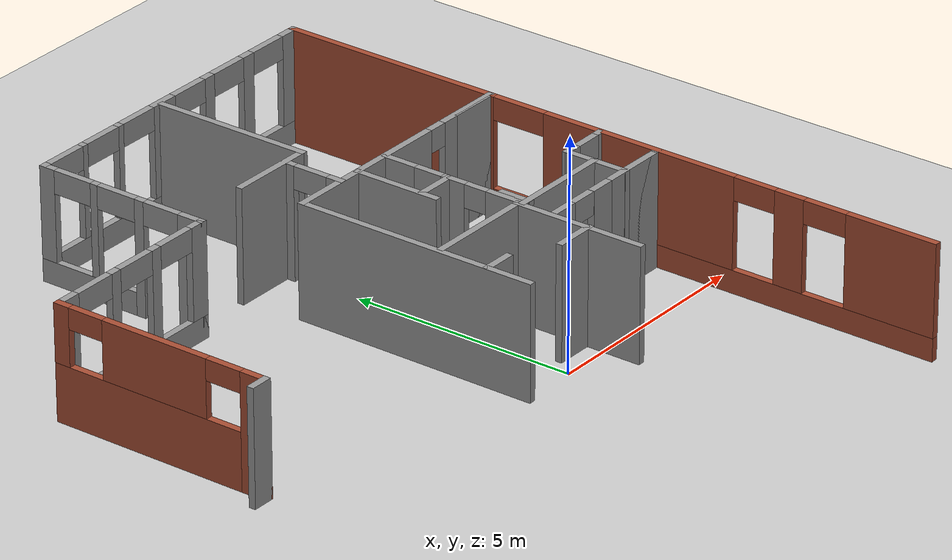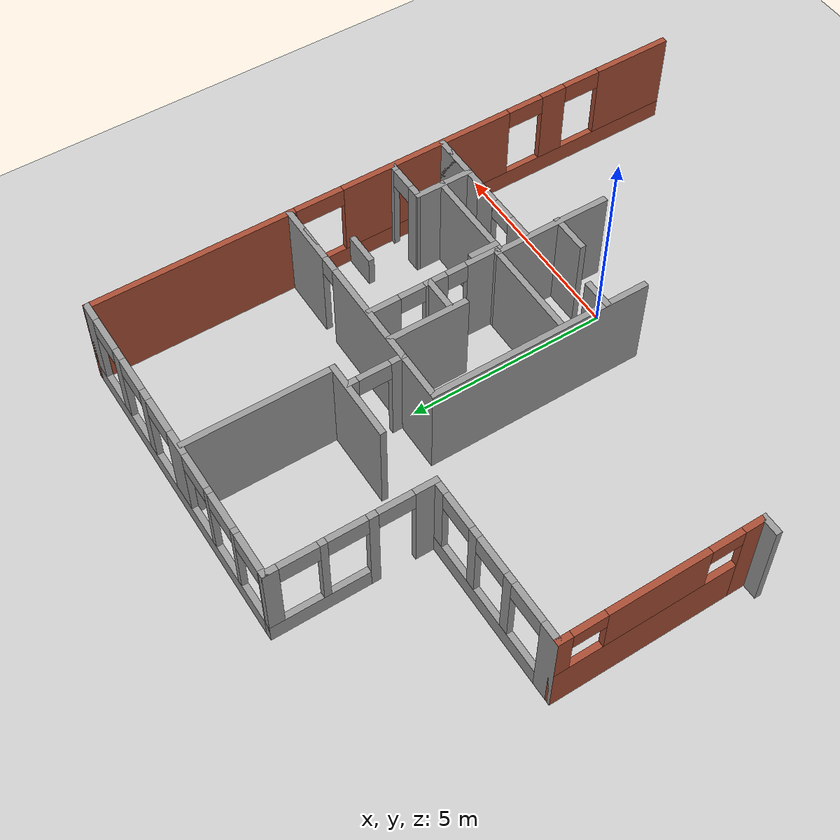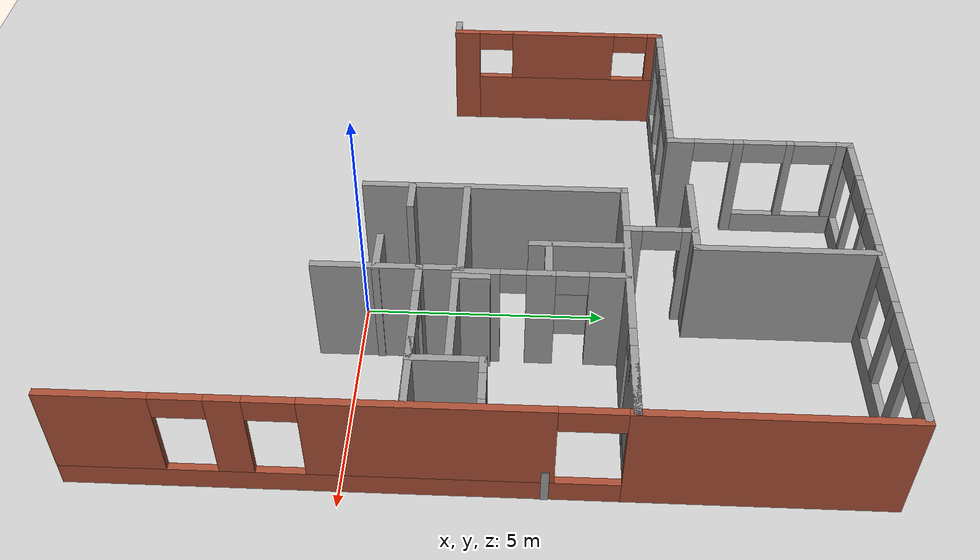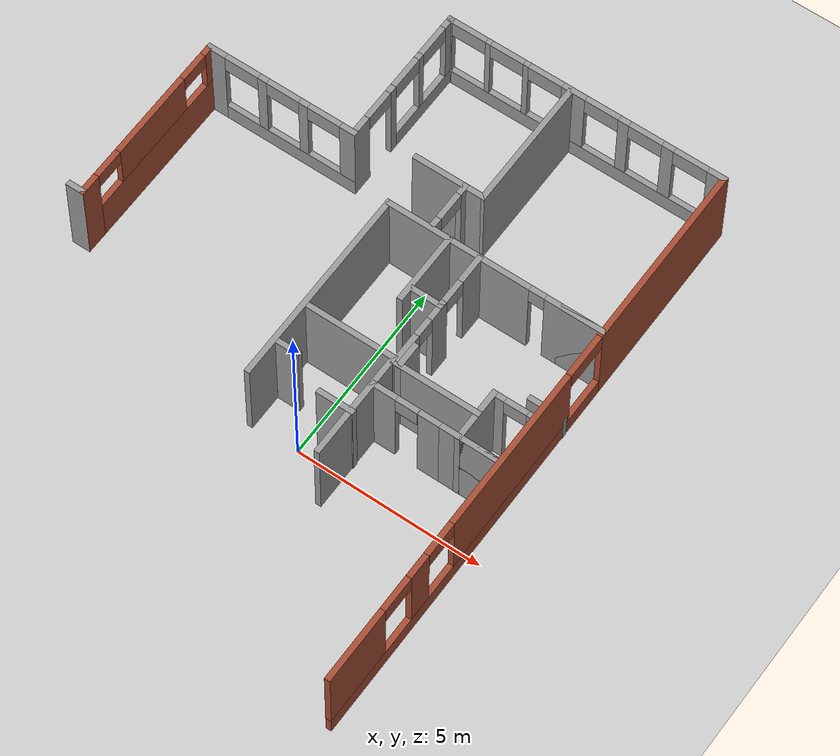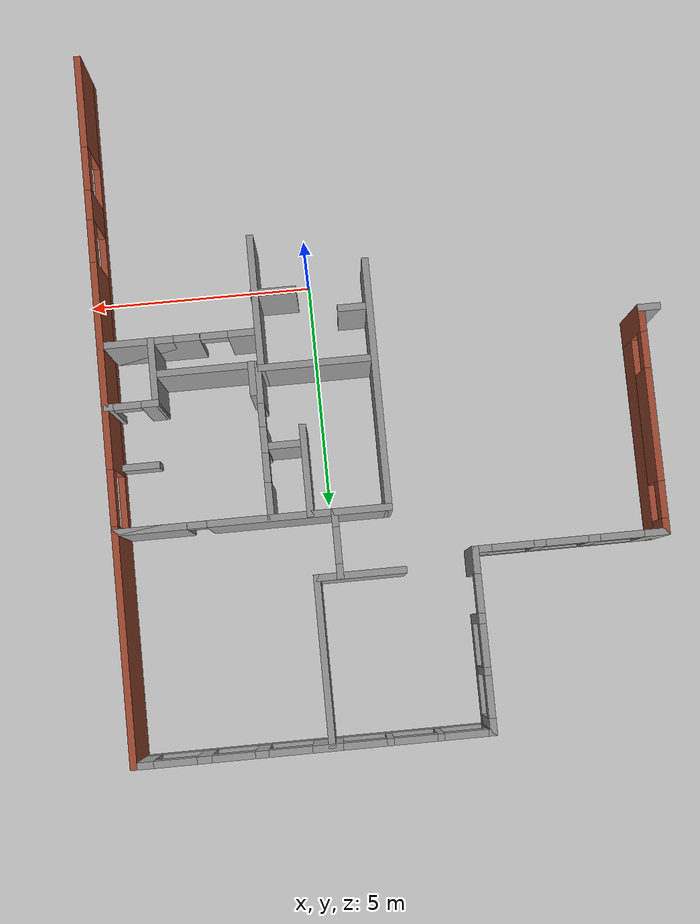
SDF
<sdf version="1.6">
 <world name="default">
  <model name="ground_plane">
   <static>1</static>
   <link name="link">
    <collision name="collision">
     <geometry><plane><normal>0 0 1</normal><size>100 100</size></plane></geometry>
     <surface><friction><ode><mu>100</mu><mu2>50</mu2></ode></friction></surface>
    </collision>
    <visual name="visual">
     <cast_shadows>0</cast_shadows>
     <geometry><plane><normal>0 0 1</normal><size>100 100</size></plane></geometry>
     <material>
      <script><uri>file://media/materials/scripts/gazebo.material</uri><name>Gazebo/Grey</name></script>
     </material>
    </visual>
   </link>
  </model>
  <model name="Winter_Wren">
   <pose>-1.42891 0.6718 0 0 -0 0</pose>
   <link name="Wall_100">
    <pose>5.45291 1.9622 0 0 -0 0.007619</pose>
    <visual name="Wall_100_Visual_0">
     <pose>-0.407439 0 1.25 0 -0 0</pose>
     <geometry><box><size>0.385122 0.15 2.5</size></box></geometry>
     <material>
      <script><uri>file://media/materials/scripts/gazebo.material</uri><name>Gazebo/Grey</name></script>
      <ambient>1 1 1 1</ambient>
     </material>
     <meta><layer>0</layer></meta>
    </visual>
    <collision name="Wall_100_Collision_0">
     <geometry><box><size>0.385122 0.15 2.5</size></box></geometry>
     <pose>-0.407439 0 1.25 0 -0 0</pose>
    </collision>
    <visual name="Wall_100_Visual_1">
     <pose>0.493412 0 1.25 0 -0 0</pose>
     <geometry><box><size>0.213175 0.15 2.5</size></box></geometry>
     <material>
      <script><uri>file://media/materials/scripts/gazebo.material</uri><name>Gazebo/Grey</name></script>
      <ambient>1 1 1 1</ambient>
     </material>
     <meta><layer>0</layer></meta>
    </visual>
    <collision name="Wall_100_Collision_1">
     <geometry><box><size>0.213175 0.15 2.5</size></box></geometry>
     <pose>0.493412 0 1.25 0 -0 0</pose>
    </collision>
    <visual name="Wall_100_Visual_2">
     <pose>0.085973 0 2.25 0 -0 0</pose>
     <geometry><box><size>0.601703 0.15 0.5</size></box></geometry>
     <material>
      <script><uri>file://media/materials/scripts/gazebo.material</uri><name>Gazebo/Grey</name></script>
      <ambient>1 1 1 1</ambient>
     </material>
     <meta><layer>0</layer></meta>
    </visual>
    <collision name="Wall_100_Collision_2">
     <geometry><box><size>0.601703 0.15 0.5</size></box></geometry>
     <pose>0.085973 0 2.25 0 -0 0</pose>
    </collision>
   </link>
   <link name="Wall_102">
    <pose>2.68057 2.97391 0 0 -0 1.5712</pose>
    <visual name="Wall_102_Visual_0">
     <pose>-1.25598 0 1.25 0 -0 0</pose>
     <geometry><box><size>0.922652 0.15 2.5</size></box></geometry>
     <material>
      <script><uri>file://media/materials/scripts/gazebo.material</uri><name>Gazebo/Grey</name></script>
      <ambient>1 1 1 1</ambient>
     </material>
     <meta><layer>0</layer></meta>
    </visual>
    <collision name="Wall_102_Collision_0">
     <geometry><box><size>0.922652 0.15 2.5</size></box></geometry>
     <pose>-1.25598 0 1.25 0 -0 0</pose>
    </collision>
    <visual name="Wall_102_Visual_1">
     <pose>-0.005242 0 1.25 0 -0 0</pose>
     <geometry><box><size>0.565593 0.15 2.5</size></box></geometry>
     <material>
      <script><uri>file://media/materials/scripts/gazebo.material</uri><name>Gazebo/Grey</name></script>
      <ambient>1 1 1 1</ambient>
     </material>
     <meta><layer>0</layer></meta>
    </visual>
    <collision name="Wall_102_Collision_1">
     <geometry><box><size>0.565593 0.15 2.5</size></box></geometry>
     <pose>-0.005242 0 1.25 0 -0 0</pose>
    </collision>
    <visual name="Wall_102_Visual_2">
     <pose>1.31557 0 1.25 0 -0 0</pose>
     <geometry><box><size>0.80346 0.15 2.5</size></box></geometry>
     <material>
      <script><uri>file://media/materials/scripts/gazebo.material</uri><name>Gazebo/Grey</name></script>
      <ambient>1 1 1 1</ambient>
     </material>
     <meta><layer>0</layer></meta>
    </visual>
    <collision name="Wall_102_Collision_2">
     <geometry><box><size>0.80346 0.15 2.5</size></box></geometry>
     <pose>1.31557 0 1.25 0 -0 0</pose>
    </collision>
    <visual name="Wall_102_Visual_3">
     <pose>-0.541345 0 2.25 0 -0 0</pose>
     <geometry><box><size>0.506613 0.15 0.5</size></box></geometry>
     <material>
      <script><uri>file://media/materials/scripts/gazebo.material</uri><name>Gazebo/Grey</name></script>
      <ambient>1 1 1 1</ambient>
     </material>
     <meta><layer>0</layer></meta>
    </visual>
    <collision name="Wall_102_Collision_3">
     <geometry><box><size>0.506613 0.15 0.5</size></box></geometry>
     <pose>-0.541345 0 2.25 0 -0 0</pose>
    </collision>
    <visual name="Wall_102_Visual_4">
     <pose>0.595699 0 2.25 0 -0 0</pose>
     <geometry><box><size>0.636289 0.15 0.5</size></box></geometry>
     <material>
      <script><uri>file://media/materials/scripts/gazebo.material</uri><name>Gazebo/Grey</name></script>
      <ambient>1 1 1 1</ambient>
     </material>
     <meta><layer>0</layer></meta>
    </visual>
    <collision name="Wall_102_Collision_4">
     <geometry><box><size>0.636289 0.15 0.5</size></box></geometry>
     <pose>0.595699 0 2.25 0 -0 0</pose>
    </collision>
   </link>
   <link name="Wall_104">
    <collision name="Wall_104_Collision">
     <geometry><box><size>0.95 0.15 2.5</size></box></geometry>
     <pose>0 0 1.25 0 -0 0</pose>
    </collision>
    <visual name="Wall_104_Visual">
     <pose>0 0 1.25 0 -0 0</pose>
     <geometry><box><size>0.95 0.15 2.5</size></box></geometry>
     <material>
      <script><uri>file://media/materials/scripts/gazebo.material</uri><name>Gazebo/Grey</name></script>
      <ambient>1 1 1 1</ambient>
     </material>
     <meta><layer>0</layer></meta>
    </visual>
    <pose>2.27097 3.1122 0 0 -0 3.14159</pose>
   </link>
   <link name="Wall_106">
    <collision name="Wall_106_Collision">
     <geometry><box><size>2 0.15 2.5</size></box></geometry>
     <pose>0 0 1.25 0 -0 0</pose>
    </collision>
    <visual name="Wall_106_Visual">
     <pose>0 0 1.25 0 -0 0</pose>
     <geometry><box><size>2 0.15 2.5</size></box></geometry>
     <material>
      <script><uri>file://media/materials/scripts/gazebo.material</uri><name>Gazebo/Grey</name></script>
      <ambient>1 1 1 1</ambient>
     </material>
     <meta><layer>0</layer></meta>
    </visual>
    <pose>1.83763 3.70673 0 0 -0 1.5708</pose>
   </link>
   <link name="Wall_109">
    <collision name="Wall_109_Collision">
     <geometry><box><size>0.75 0.15 2.5</size></box></geometry>
     <pose>0 0 1.25 0 -0 0</pose>
    </collision>
    <visual name="Wall_109_Visual">
     <pose>0 0 1.25 0 -0 0</pose>
     <geometry><box><size>0.75 0.15 2.5</size></box></geometry>
     <material>
      <script><uri>file://media/materials/scripts/gazebo.material</uri><name>Gazebo/Grey</name></script>
      <ambient>1 1 1 1</ambient>
     </material>
     <meta><layer>0</layer></meta>
    </visual>
    <pose>2.81628 1.62211 0 0 0 -1.5708</pose>
   </link>
   <link name="Wall_111">
    <collision name="Wall_111_Collision">
     <geometry><box><size>1 0.15 0.813</size></box></geometry>
     <pose>0 0 0.4065 0 -0 0</pose>
    </collision>
    <visual name="Wall_111_Visual">
     <pose>0 0 0.4065 0 -0 0</pose>
     <geometry><box><size>1 0.15 0.813</size></box></geometry>
     <material>
      <script><uri>file://media/materials/scripts/gazebo.material</uri><name>Gazebo/Grey</name></script>
      <ambient>1 1 1 1</ambient>
     </material>
     <meta><layer>0</layer></meta>
    </visual>
    <pose>5.60491 3.1252 0 0 -0 3.14159</pose>
   </link>
   <link name="Wall_113">
    <collision name="Wall_113_Collision">
     <geometry><box><size>1 0.15 2.5</size></box></geometry>
     <pose>0 0 1.25 0 -0 0</pose>
    </collision>
    <visual name="Wall_113_Visual">
     <pose>0 0 1.25 0 -0 0</pose>
     <geometry><box><size>1 0.15 2.5</size></box></geometry>
     <material>
      <script><uri>file://media/materials/scripts/gazebo.material</uri><name>Gazebo/Grey</name></script>
      <ambient>1 1 1 1</ambient>
     </material>
     <meta><layer>0</layer></meta>
    </visual>
    <pose>2.20363 -0.230073 0 0 -0 3.14159</pose>
   </link>
   <link name="Wall_115">
    <collision name="Wall_115_Collision">
     <geometry><box><size>2 0.15 2.5</size></box></geometry>
     <pose>0 0 1.25 0 -0 0</pose>
    </collision>
    <visual name="Wall_115_Visual">
     <pose>0 0 1.25 0 -0 0</pose>
     <geometry><box><size>2 0.15 2.5</size></box></geometry>
     <material>
      <script><uri>file://media/materials/scripts/gazebo.material</uri><name>Gazebo/Grey</name></script>
      <ambient>1 1 1 1</ambient>
     </material>
     <meta><layer>0</layer></meta>
    </visual>
    <pose>0.902865 6.01206 0 0 -0 0.000156</pose>
   </link>
   <link name="Wall_117">
    <collision name="Wall_117_Collision">
     <geometry><box><size>3.65 0.15 2.5</size></box></geometry>
     <pose>0 0 1.25 0 -0 0</pose>
    </collision>
    <visual name="Wall_117_Visual">
     <pose>0 0 1.25 0 -0 0</pose>
     <geometry><box><size>3.65 0.15 2.5</size></box></geometry>
     <material>
      <script><uri>file://media/materials/scripts/gazebo.material</uri><name>Gazebo/Grey</name></script>
      <ambient>1 1 1 1</ambient>
     </material>
     <meta><layer>0</layer></meta>
    </visual>
    <pose>1.82791 7.7622 0 0 -0 1.5708</pose>
   </link>
   <link name="Wall_119">
    <pose>1.32474 5.33276 0 0 0 -1.5708</pose>
    <visual name="Wall_119_Visual_0">
     <pose>-0.585981 0 1.25 0 -0 0</pose>
     <geometry><box><size>0.328039 0.15 2.5</size></box></geometry>
     <material>
      <script><uri>file://media/materials/scripts/gazebo.material</uri><name>Gazebo/Grey</name></script>
      <ambient>1 1 1 1</ambient>
     </material>
     <meta><layer>0</layer></meta>
    </visual>
    <collision name="Wall_119_Collision_0">
     <geometry><box><size>0.328039 0.15 2.5</size></box></geometry>
     <pose>-0.585981 0 1.25 0 -0 0</pose>
    </collision>
    <visual name="Wall_119_Visual_1">
     <pose>0.557309 0 1.25 0 -0 0</pose>
     <geometry><box><size>0.385383 0.15 2.5</size></box></geometry>
     <material>
      <script><uri>file://media/materials/scripts/gazebo.material</uri><name>Gazebo/Grey</name></script>
      <ambient>1 1 1 1</ambient>
     </material>
     <meta><layer>0</layer></meta>
    </visual>
    <collision name="Wall_119_Collision_1">
     <geometry><box><size>0.385383 0.15 2.5</size></box></geometry>
     <pose>0.557309 0 1.25 0 -0 0</pose>
    </collision>
    <visual name="Wall_119_Visual_2">
     <pose>-0.028672 0 2.25 0 -0 0</pose>
     <geometry><box><size>0.786578 0.15 0.5</size></box></geometry>
     <material>
      <script><uri>file://media/materials/scripts/gazebo.material</uri><name>Gazebo/Grey</name></script>
      <ambient>1 1 1 1</ambient>
     </material>
     <meta><layer>0</layer></meta>
    </visual>
    <collision name="Wall_119_Collision_2">
     <geometry><box><size>0.786578 0.15 0.5</size></box></geometry>
     <pose>-0.028672 0 2.25 0 -0 0</pose>
    </collision>
   </link>
   <link name="Wall_121">
    <collision name="Wall_121_Collision">
     <geometry><box><size>1.5 0.15 2.5</size></box></geometry>
     <pose>0 0 1.25 0 -0 0</pose>
    </collision>
    <visual name="Wall_121_Visual">
     <pose>0 0 1.25 0 -0 0</pose>
     <geometry><box><size>1.5 0.15 2.5</size></box></geometry>
     <material>
      <script><uri>file://media/materials/scripts/gazebo.material</uri><name>Gazebo/Grey</name></script>
      <ambient>1 1 1 1</ambient>
     </material>
     <meta><layer>0</layer></meta>
    </visual>
    <pose>4.92801 1.28308 0 0 0 -1.57065</pose>
   </link>
   <link name="Wall_13">
    <collision name="Wall_13_Collision">
     <geometry><box><size>0.5 0.15 2.5</size></box></geometry>
     <pose>0 0 1.25 0 -0 0</pose>
    </collision>
    <visual name="Wall_13_Visual">
     <pose>0 0 1.25 0 -0 0</pose>
     <geometry><box><size>0.5 0.15 2.5</size></box></geometry>
     <material>
      <script><uri>file://media/materials/scripts/gazebo.material</uri><name>Gazebo/Grey</name></script>
      <ambient>1 1 1 1</ambient>
     </material>
     <meta><layer>0</layer></meta>
    </visual>
    <pose>-5.85491 0.875437 0 0 -0 0</pose>
   </link>
   <link name="Wall_15">
    <pose>-5.67991 3.30044 0 0 -0 1.5708</pose>
    <visual name="Wall_15_Visual_0">
     <pose>-2.20148 0 1.25 0 -0 0</pose>
     <geometry><box><size>0.59704 0.15 2.5</size></box></geometry>
     <material>
      <script><uri>file://media/materials/scripts/gazebo.material</uri><name>Gazebo/Bricks</name></script>
      <ambient>1 1 1 1</ambient>
     </material>
     <meta><layer>0</layer></meta>
    </visual>
    <collision name="Wall_15_Collision_0">
     <geometry><box><size>0.59704 0.15 2.5</size></box></geometry>
     <pose>-2.20148 0 1.25 0 -0 0</pose>
    </collision>
    <visual name="Wall_15_Visual_1">
     <pose>0.29852 0 0.625 0 -0 0</pose>
     <geometry><box><size>4.40296 0.15 1.25</size></box></geometry>
     <material>
      <script><uri>file://media/materials/scripts/gazebo.material</uri><name>Gazebo/Bricks</name></script>
      <ambient>1 1 1 1</ambient>
     </material>
     <meta><layer>0</layer></meta>
    </visual>
    <collision name="Wall_15_Collision_1">
     <geometry><box><size>4.40296 0.15 1.25</size></box></geometry>
     <pose>0.29852 0 0.625 0 -0 0</pose>
    </collision>
    <visual name="Wall_15_Visual_2">
     <pose>0.120492 0 1.875 0 -0 0</pose>
     <geometry><box><size>2.4469 0.15 1.25</size></box></geometry>
     <material>
      <script><uri>file://media/materials/scripts/gazebo.material</uri><name>Gazebo/Bricks</name></script>
      <ambient>1 1 1 1</ambient>
     </material>
     <meta><layer>0</layer></meta>
    </visual>
    <collision name="Wall_15_Collision_2">
     <geometry><box><size>2.4469 0.15 1.25</size></box></geometry>
     <pose>0.120492 0 1.875 0 -0 0</pose>
    </collision>
    <visual name="Wall_15_Visual_3">
     <pose>2.32197 0 1.875 0 -0 0</pose>
     <geometry><box><size>0.356057 0.15 1.25</size></box></geometry>
     <material>
      <script><uri>file://media/materials/scripts/gazebo.material</uri><name>Gazebo/Bricks</name></script>
      <ambient>1 1 1 1</ambient>
     </material>
     <meta><layer>0</layer></meta>
    </visual>
    <collision name="Wall_15_Collision_3">
     <geometry><box><size>0.356057 0.15 1.25</size></box></geometry>
     <pose>2.32197 0 1.875 0 -0 0</pose>
    </collision>
    <visual name="Wall_15_Visual_4">
     <pose>-1.50296 0 2.275 0 -0 0</pose>
     <geometry><box><size>0.8 0.15 0.45</size></box></geometry>
     <material>
      <script><uri>file://media/materials/scripts/gazebo.material</uri><name>Gazebo/Bricks</name></script>
      <ambient>1 1 1 1</ambient>
     </material>
     <meta><layer>0</layer></meta>
    </visual>
    <collision name="Wall_15_Collision_4">
     <geometry><box><size>0.8 0.15 0.45</size></box></geometry>
     <pose>-1.50296 0 2.275 0 -0 0</pose>
    </collision>
    <visual name="Wall_15_Visual_5">
     <pose>1.74394 0 2.275 0 -0 0</pose>
     <geometry><box><size>0.8 0.15 0.45</size></box></geometry>
     <material>
      <script><uri>file://media/materials/scripts/gazebo.material</uri><name>Gazebo/Bricks</name></script>
      <ambient>1 1 1 1</ambient>
     </material>
     <meta><layer>0</layer></meta>
    </visual>
    <collision name="Wall_15_Collision_5">
     <geometry><box><size>0.8 0.15 0.45</size></box></geometry>
     <pose>1.74394 0 2.275 0 -0 0</pose>
    </collision>
   </link>
   <link name="Wall_17">
    <pose>-3.62991 5.72544 0 0 -0 0</pose>
    <visual name="Wall_17_Visual_0">
     <pose>-1.84959 0 1.25 0 -0 0</pose>
     <geometry><box><size>0.55082 0.15 2.5</size></box></geometry>
     <material>
      <script><uri>file://media/materials/scripts/gazebo.material</uri><name>Gazebo/Grey</name></script>
      <ambient>1 1 1 1</ambient>
     </material>
     <meta><layer>0</layer></meta>
    </visual>
    <collision name="Wall_17_Collision_0">
     <geometry><box><size>0.55082 0.15 2.5</size></box></geometry>
     <pose>-1.84959 0 1.25 0 -0 0</pose>
    </collision>
    <visual name="Wall_17_Visual_1">
     <pose>0.27541 0 0.25 0 -0 0</pose>
     <geometry><box><size>3.69918 0.15 0.5</size></box></geometry>
     <material>
      <script><uri>file://media/materials/scripts/gazebo.material</uri><name>Gazebo/Grey</name></script>
      <ambient>1 1 1 1</ambient>
     </material>
     <meta><layer>0</layer></meta>
    </visual>
    <collision name="Wall_17_Collision_1">
     <geometry><box><size>3.69918 0.15 0.5</size></box></geometry>
     <pose>0.27541 0 0.25 0 -0 0</pose>
    </collision>
    <visual name="Wall_17_Visual_2">
     <pose>-0.504959 0 1.5 0 -0 0</pose>
     <geometry><box><size>0.252442 0.15 2</size></box></geometry>
     <material>
      <script><uri>file://media/materials/scripts/gazebo.material</uri><name>Gazebo/Grey</name></script>
      <ambient>1 1 1 1</ambient>
     </material>
     <meta><layer>0</layer></meta>
    </visual>
    <collision name="Wall_17_Collision_2">
     <geometry><box><size>0.252442 0.15 2</size></box></geometry>
     <pose>-0.504959 0 1.5 0 -0 0</pose>
    </collision>
    <visual name="Wall_17_Visual_3">
     <pose>0.660585 0 1.5 0 -0 0</pose>
     <geometry><box><size>0.252646 0.15 2</size></box></geometry>
     <material>
      <script><uri>file://media/materials/scripts/gazebo.material</uri><name>Gazebo/Grey</name></script>
      <ambient>1 1 1 1</ambient>
     </material>
     <meta><layer>0</layer></meta>
    </visual>
    <collision name="Wall_17_Collision_3">
     <geometry><box><size>0.252646 0.15 2</size></box></geometry>
     <pose>0.660585 0 1.5 0 -0 0</pose>
    </collision>
    <visual name="Wall_17_Visual_4">
     <pose>1.90845 0 1.5 0 -0 0</pose>
     <geometry><box><size>0.433092 0.15 2</size></box></geometry>
     <material>
      <script><uri>file://media/materials/scripts/gazebo.material</uri><name>Gazebo/Grey</name></script>
      <ambient>1 1 1 1</ambient>
     </material>
     <meta><layer>0</layer></meta>
    </visual>
    <collision name="Wall_17_Collision_4">
     <geometry><box><size>0.433092 0.15 2</size></box></geometry>
     <pose>1.90845 0 1.5 0 -0 0</pose>
    </collision>
    <visual name="Wall_17_Visual_5">
     <pose>-1.10268 0 2.25 0 -0 0</pose>
     <geometry><box><size>0.943 0.15 0.5</size></box></geometry>
     <material>
      <script><uri>file://media/materials/scripts/gazebo.material</uri><name>Gazebo/Grey</name></script>
      <ambient>1 1 1 1</ambient>
     </material>
     <meta><layer>0</layer></meta>
    </visual>
    <collision name="Wall_17_Collision_5">
     <geometry><box><size>0.943 0.15 0.5</size></box></geometry>
     <pose>-1.10268 0 2.25 0 -0 0</pose>
    </collision>
    <visual name="Wall_17_Visual_6">
     <pose>0.077763 0 2.25 0 -0 0</pose>
     <geometry><box><size>0.913 0.15 0.5</size></box></geometry>
     <material>
      <script><uri>file://media/materials/scripts/gazebo.material</uri><name>Gazebo/Grey</name></script>
      <ambient>1 1 1 1</ambient>
     </material>
     <meta><layer>0</layer></meta>
    </visual>
    <collision name="Wall_17_Collision_6">
     <geometry><box><size>0.913 0.15 0.5</size></box></geometry>
     <pose>0.077763 0 2.25 0 -0 0</pose>
    </collision>
    <visual name="Wall_17_Visual_7">
     <pose>1.23941 0 2.25 0 -0 0</pose>
     <geometry><box><size>0.905 0.15 0.5</size></box></geometry>
     <material>
      <script><uri>file://media/materials/scripts/gazebo.material</uri><name>Gazebo/Grey</name></script>
      <ambient>1 1 1 1</ambient>
     </material>
     <meta><layer>0</layer></meta>
    </visual>
    <collision name="Wall_17_Collision_7">
     <geometry><box><size>0.905 0.15 0.5</size></box></geometry>
     <pose>1.23941 0 2.25 0 -0 0</pose>
    </collision>
   </link>
   <link name="Wall_19">
    <pose>-1.57991 7.65044 0 0 -0 1.5708</pose>
    <visual name="Wall_19_Visual_0">
     <pose>-1.70598 0 1.25 0 -0 0</pose>
     <geometry><box><size>0.588032 0.15 2.5</size></box></geometry>
     <material>
      <script><uri>file://media/materials/scripts/gazebo.material</uri><name>Gazebo/Grey</name></script>
      <ambient>1 1 1 1</ambient>
     </material>
     <meta><layer>0</layer></meta>
    </visual>
    <collision name="Wall_19_Collision_0">
     <geometry><box><size>0.588032 0.15 2.5</size></box></geometry>
     <pose>-1.70598 0 1.25 0 -0 0</pose>
    </collision>
    <visual name="Wall_19_Visual_1">
     <pose>-0.462155 0 1.25 0 -0 0</pose>
     <geometry><box><size>0.220609 0.15 2.5</size></box></geometry>
     <material>
      <script><uri>file://media/materials/scripts/gazebo.material</uri><name>Gazebo/Grey</name></script>
      <ambient>1 1 1 1</ambient>
     </material>
     <meta><layer>0</layer></meta>
    </visual>
    <collision name="Wall_19_Collision_1">
     <geometry><box><size>0.220609 0.15 2.5</size></box></geometry>
     <pose>-0.462155 0 1.25 0 -0 0</pose>
    </collision>
    <visual name="Wall_19_Visual_2">
     <pose>0.824075 0 0.25 0 -0 0</pose>
     <geometry><box><size>2.35185 0.15 0.5</size></box></geometry>
     <material>
      <script><uri>file://media/materials/scripts/gazebo.material</uri><name>Gazebo/Grey</name></script>
      <ambient>1 1 1 1</ambient>
     </material>
     <meta><layer>0</layer></meta>
    </visual>
    <collision name="Wall_19_Collision_2">
     <geometry><box><size>2.35185 0.15 0.5</size></box></geometry>
     <pose>0.824075 0 0.25 0 -0 0</pose>
    </collision>
    <visual name="Wall_19_Visual_3">
     <pose>0.653344 0 1.5 0 -0 0</pose>
     <geometry><box><size>0.16979 0.15 2</size></box></geometry>
     <material>
      <script><uri>file://media/materials/scripts/gazebo.material</uri><name>Gazebo/Grey</name></script>
      <ambient>1 1 1 1</ambient>
     </material>
     <meta><layer>0</layer></meta>
    </visual>
    <collision name="Wall_19_Collision_3">
     <geometry><box><size>0.16979 0.15 2</size></box></geometry>
     <pose>0.653344 0 1.5 0 -0 0</pose>
    </collision>
    <visual name="Wall_19_Visual_4">
     <pose>1.81812 0 1.5 0 -0 0</pose>
     <geometry><box><size>0.363761 0.15 2</size></box></geometry>
     <material>
      <script><uri>file://media/materials/scripts/gazebo.material</uri><name>Gazebo/Grey</name></script>
      <ambient>1 1 1 1</ambient>
     </material>
     <meta><layer>0</layer></meta>
    </visual>
    <collision name="Wall_19_Collision_4">
     <geometry><box><size>0.363761 0.15 2</size></box></geometry>
     <pose>1.81812 0 1.5 0 -0 0</pose>
    </collision>
    <visual name="Wall_19_Visual_5">
     <pose>-0.992214 0 2.25 0 -0 0</pose>
     <geometry><box><size>0.839509 0.15 0.5</size></box></geometry>
     <material>
      <script><uri>file://media/materials/scripts/gazebo.material</uri><name>Gazebo/Grey</name></script>
      <ambient>1 1 1 1</ambient>
     </material>
     <meta><layer>0</layer></meta>
    </visual>
    <collision name="Wall_19_Collision_5">
     <geometry><box><size>0.839509 0.15 0.5</size></box></geometry>
     <pose>-0.992214 0 2.25 0 -0 0</pose>
    </collision>
    <visual name="Wall_19_Visual_6">
     <pose>0.108299 0 2.25 0 -0 0</pose>
     <geometry><box><size>0.9203 0.15 0.5</size></box></geometry>
     <material>
      <script><uri>file://media/materials/scripts/gazebo.material</uri><name>Gazebo/Grey</name></script>
      <ambient>1 1 1 1</ambient>
     </material>
     <meta><layer>0</layer></meta>
    </visual>
    <collision name="Wall_19_Collision_6">
     <geometry><box><size>0.9203 0.15 0.5</size></box></geometry>
     <pose>0.108299 0 2.25 0 -0 0</pose>
    </collision>
    <visual name="Wall_19_Visual_7">
     <pose>1.18724 0 2.25 0 -0 0</pose>
     <geometry><box><size>0.898 0.15 0.5</size></box></geometry>
     <material>
      <script><uri>file://media/materials/scripts/gazebo.material</uri><name>Gazebo/Grey</name></script>
      <ambient>1 1 1 1</ambient>
     </material>
     <meta><layer>0</layer></meta>
    </visual>
    <collision name="Wall_19_Collision_7">
     <geometry><box><size>0.898 0.15 0.5</size></box></geometry>
     <pose>1.18724 0 2.25 0 -0 0</pose>
    </collision>
   </link>
   <link name="Wall_21">
    <pose>2.22009 9.57544 0 0 -0 0</pose>
    <visual name="Wall_21_Visual_0">
     <pose>-3.78426 0 1.25 0 -0 0</pose>
     <geometry><box><size>0.181482 0.15 2.5</size></box></geometry>
     <material>
      <script><uri>file://media/materials/scripts/gazebo.material</uri><name>Gazebo/Grey</name></script>
      <ambient>1 1 1 1</ambient>
     </material>
     <meta><layer>0</layer></meta>
    </visual>
    <collision name="Wall_21_Collision_0">
     <geometry><box><size>0.181482 0.15 2.5</size></box></geometry>
     <pose>-3.78426 0 1.25 0 -0 0</pose>
    </collision>
    <visual name="Wall_21_Visual_1">
     <pose>0.090741 0 0.25 0 -0 0</pose>
     <geometry><box><size>7.56852 0.15 0.5</size></box></geometry>
     <material>
      <script><uri>file://media/materials/scripts/gazebo.material</uri><name>Gazebo/Grey</name></script>
      <ambient>1 1 1 1</ambient>
     </material>
     <meta><layer>0</layer></meta>
    </visual>
    <collision name="Wall_21_Collision_1">
     <geometry><box><size>7.56852 0.15 0.5</size></box></geometry>
     <pose>0.090741 0 0.25 0 -0 0</pose>
    </collision>
    <visual name="Wall_21_Visual_2">
     <pose>-2.68851 0 1.5 0 -0 0</pose>
     <geometry><box><size>0.140011 0.15 2</size></box></geometry>
     <material>
      <script><uri>file://media/materials/scripts/gazebo.material</uri><name>Gazebo/Grey</name></script>
      <ambient>1 1 1 1</ambient>
     </material>
     <meta><layer>0</layer></meta>
    </visual>
    <collision name="Wall_21_Collision_2">
     <geometry><box><size>0.140011 0.15 2</size></box></geometry>
     <pose>-2.68851 0 1.5 0 -0 0</pose>
    </collision>
    <visual name="Wall_21_Visual_3">
     <pose>-1.62413 0 1.5 0 -0 0</pose>
     <geometry><box><size>0.148154 0.15 2</size></box></geometry>
     <material>
      <script><uri>file://media/materials/scripts/gazebo.material</uri><name>Gazebo/Grey</name></script>
      <ambient>1 1 1 1</ambient>
     </material>
     <meta><layer>0</layer></meta>
    </visual>
    <collision name="Wall_21_Collision_3">
     <geometry><box><size>0.148154 0.15 2</size></box></geometry>
     <pose>-1.62413 0 1.5 0 -0 0</pose>
    </collision>
    <visual name="Wall_21_Visual_4">
     <pose>-0.302512 0 1.5 0 -0 0</pose>
     <geometry><box><size>0.647083 0.15 2</size></box></geometry>
     <material>
      <script><uri>file://media/materials/scripts/gazebo.material</uri><name>Gazebo/Grey</name></script>
      <ambient>1 1 1 1</ambient>
     </material>
     <meta><layer>0</layer></meta>
    </visual>
    <collision name="Wall_21_Collision_4">
     <geometry><box><size>0.647083 0.15 2</size></box></geometry>
     <pose>-0.302512 0 1.5 0 -0 0</pose>
    </collision>
    <visual name="Wall_21_Visual_5">
     <pose>1.08803 0 1.5 0 -0 0</pose>
     <geometry><box><size>0.285999 0.15 2</size></box></geometry>
     <material>
      <script><uri>file://media/materials/scripts/gazebo.material</uri><name>Gazebo/Grey</name></script>
      <ambient>1 1 1 1</ambient>
     </material>
     <meta><layer>0</layer></meta>
    </visual>
    <collision name="Wall_21_Collision_5">
     <geometry><box><size>0.285999 0.15 2</size></box></geometry>
     <pose>1.08803 0 1.5 0 -0 0</pose>
    </collision>
    <visual name="Wall_21_Visual_6">
     <pose>2.30024 0 1.5 0 -0 0</pose>
     <geometry><box><size>0.31842 0.15 2</size></box></geometry>
     <material>
      <script><uri>file://media/materials/scripts/gazebo.material</uri><name>Gazebo/Grey</name></script>
      <ambient>1 1 1 1</ambient>
     </material>
     <meta><layer>0</layer></meta>
    </visual>
    <collision name="Wall_21_Collision_6">
     <geometry><box><size>0.31842 0.15 2</size></box></geometry>
     <pose>2.30024 0 1.5 0 -0 0</pose>
    </collision>
    <visual name="Wall_21_Visual_7">
     <pose>3.62622 0 1.5 0 -0 0</pose>
     <geometry><box><size>0.497552 0.15 2</size></box></geometry>
     <material>
      <script><uri>file://media/materials/scripts/gazebo.material</uri><name>Gazebo/Grey</name></script>
      <ambient>1 1 1 1</ambient>
     </material>
     <meta><layer>0</layer></meta>
    </visual>
    <collision name="Wall_21_Collision_7">
     <geometry><box><size>0.497552 0.15 2</size></box></geometry>
     <pose>3.62622 0 1.5 0 -0 0</pose>
    </collision>
    <visual name="Wall_21_Visual_8">
     <pose>-3.22602 0 2.25 0 -0 0</pose>
     <geometry><box><size>0.935 0.15 0.5</size></box></geometry>
     <material>
      <script><uri>file://media/materials/scripts/gazebo.material</uri><name>Gazebo/Grey</name></script>
      <ambient>1 1 1 1</ambient>
     </material>
     <meta><layer>0</layer></meta>
    </visual>
    <collision name="Wall_21_Collision_8">
     <geometry><box><size>0.935 0.15 0.5</size></box></geometry>
     <pose>-3.22602 0 2.25 0 -0 0</pose>
    </collision>
    <visual name="Wall_21_Visual_9">
     <pose>-2.15836 0 2.25 0 -0 0</pose>
     <geometry><box><size>0.9203 0.15 0.5</size></box></geometry>
     <material>
      <script><uri>file://media/materials/scripts/gazebo.material</uri><name>Gazebo/Grey</name></script>
      <ambient>1 1 1 1</ambient>
     </material>
     <meta><layer>0</layer></meta>
    </visual>
    <collision name="Wall_21_Collision_9">
     <geometry><box><size>0.9203 0.15 0.5</size></box></geometry>
     <pose>-2.15836 0 2.25 0 -0 0</pose>
    </collision>
    <visual name="Wall_21_Visual_10">
     <pose>-1.08805 0 2.25 0 -0 0</pose>
     <geometry><box><size>0.924 0.15 0.5</size></box></geometry>
     <material>
      <script><uri>file://media/materials/scripts/gazebo.material</uri><name>Gazebo/Grey</name></script>
      <ambient>1 1 1 1</ambient>
     </material>
     <meta><layer>0</layer></meta>
    </visual>
    <collision name="Wall_21_Collision_10">
     <geometry><box><size>0.924 0.15 0.5</size></box></geometry>
     <pose>-1.08805 0 2.25 0 -0 0</pose>
    </collision>
    <visual name="Wall_21_Visual_11">
     <pose>0.48303 0 2.25 0 -0 0</pose>
     <geometry><box><size>0.924 0.15 0.5</size></box></geometry>
     <material>
      <script><uri>file://media/materials/scripts/gazebo.material</uri><name>Gazebo/Grey</name></script>
      <ambient>1 1 1 1</ambient>
     </material>
     <meta><layer>0</layer></meta>
    </visual>
    <collision name="Wall_21_Collision_11">
     <geometry><box><size>0.924 0.15 0.5</size></box></geometry>
     <pose>0.48303 0 2.25 0 -0 0</pose>
    </collision>
    <visual name="Wall_21_Visual_12">
     <pose>1.68603 0 2.25 0 -0 0</pose>
     <geometry><box><size>0.91 0.15 0.5</size></box></geometry>
     <material>
      <script><uri>file://media/materials/scripts/gazebo.material</uri><name>Gazebo/Grey</name></script>
      <ambient>1 1 1 1</ambient>
     </material>
     <meta><layer>0</layer></meta>
    </visual>
    <collision name="Wall_21_Collision_12">
     <geometry><box><size>0.91 0.15 0.5</size></box></geometry>
     <pose>1.68603 0 2.25 0 -0 0</pose>
    </collision>
    <visual name="Wall_21_Visual_13">
     <pose>2.91845 0 2.25 0 -0 0</pose>
     <geometry><box><size>0.918 0.15 0.5</size></box></geometry>
     <material>
      <script><uri>file://media/materials/scripts/gazebo.material</uri><name>Gazebo/Grey</name></script>
      <ambient>1 1 1 1</ambient>
     </material>
     <meta><layer>0</layer></meta>
    </visual>
    <collision name="Wall_21_Collision_13">
     <geometry><box><size>0.918 0.15 0.5</size></box></geometry>
     <pose>2.91845 0 2.25 0 -0 0</pose>
    </collision>
   </link>
   <link name="Wall_23">
    <pose>6.02009 1.90044 0 0 0 -1.5708</pose>
    <visual name="Wall_23_Visual_0">
     <pose>-5.18257 0 1.25 0 -0 0</pose>
     <geometry><box><size>5.13486 0.15 2.5</size></box></geometry>
     <material>
      <script><uri>file://media/materials/scripts/gazebo.material</uri><name>Gazebo/Bricks</name></script>
      <ambient>1 1 1 1</ambient>
     </material>
     <meta><layer>0</layer></meta>
    </visual>
    <collision name="Wall_23_Collision_0">
     <geometry><box><size>5.13486 0.15 2.5</size></box></geometry>
     <pose>-5.18257 0 1.25 0 -0 0</pose>
    </collision>
    <visual name="Wall_23_Visual_1">
     <pose>2.56743 0 0.25 0 -0 0</pose>
     <geometry><box><size>10.3651 0.15 0.5</size></box></geometry>
     <material>
      <script><uri>file://media/materials/scripts/gazebo.material</uri><name>Gazebo/Bricks</name></script>
      <ambient>1 1 1 1</ambient>
     </material>
     <meta><layer>0</layer></meta>
    </visual>
    <collision name="Wall_23_Collision_1">
     <geometry><box><size>10.3651 0.15 0.5</size></box></geometry>
     <pose>2.56743 0 0.25 0 -0 0</pose>
    </collision>
    <visual name="Wall_23_Visual_2">
     <pose>0.86981 0 1.5 0 -0 0</pose>
     <geometry><box><size>4.5239 0.15 2</size></box></geometry>
     <material>
      <script><uri>file://media/materials/scripts/gazebo.material</uri><name>Gazebo/Bricks</name></script>
      <ambient>1 1 1 1</ambient>
     </material>
     <meta><layer>0</layer></meta>
    </visual>
    <collision name="Wall_23_Collision_2">
     <geometry><box><size>4.5239 0.15 2</size></box></geometry>
     <pose>0.86981 0 1.5 0 -0 0</pose>
    </collision>
    <visual name="Wall_23_Visual_3">
     <pose>4.40791 0 1.5 0 -0 0</pose>
     <geometry><box><size>0.666289 0.15 2</size></box></geometry>
     <material>
      <script><uri>file://media/materials/scripts/gazebo.material</uri><name>Gazebo/Bricks</name></script>
      <ambient>1 1 1 1</ambient>
     </material>
     <meta><layer>0</layer></meta>
    </visual>
    <collision name="Wall_23_Collision_3">
     <geometry><box><size>0.666289 0.15 2</size></box></geometry>
     <pose>4.40791 0 1.5 0 -0 0</pose>
    </collision>
    <visual name="Wall_23_Visual_4">
     <pose>6.72802 0 1.5 0 -0 0</pose>
     <geometry><box><size>2.04395 0.15 2</size></box></geometry>
     <material>
      <script><uri>file://media/materials/scripts/gazebo.material</uri><name>Gazebo/Bricks</name></script>
      <ambient>1 1 1 1</ambient>
     </material>
     <meta><layer>0</layer></meta>
    </visual>
    <collision name="Wall_23_Collision_4">
     <geometry><box><size>2.04395 0.15 2</size></box></geometry>
     <pose>6.72802 0 1.5 0 -0 0</pose>
    </collision>
    <visual name="Wall_23_Visual_5">
     <pose>-2.00364 0 2.25 0 -0 0</pose>
     <geometry><box><size>1.223 0.15 0.5</size></box></geometry>
     <material>
      <script><uri>file://media/materials/scripts/gazebo.material</uri><name>Gazebo/Bricks</name></script>
      <ambient>1 1 1 1</ambient>
     </material>
     <meta><layer>0</layer></meta>
    </visual>
    <collision name="Wall_23_Collision_5">
     <geometry><box><size>1.223 0.15 0.5</size></box></geometry>
     <pose>-2.00364 0 2.25 0 -0 0</pose>
    </collision>
    <visual name="Wall_23_Visual_6">
     <pose>3.60326 0 2.25 0 -0 0</pose>
     <geometry><box><size>0.943 0.15 0.5</size></box></geometry>
     <material>
      <script><uri>file://media/materials/scripts/gazebo.material</uri><name>Gazebo/Bricks</name></script>
      <ambient>1 1 1 1</ambient>
     </material>
     <meta><layer>0</layer></meta>
    </visual>
    <collision name="Wall_23_Collision_6">
     <geometry><box><size>0.943 0.15 0.5</size></box></geometry>
     <pose>3.60326 0 2.25 0 -0 0</pose>
    </collision>
    <visual name="Wall_23_Visual_7">
     <pose>5.22355 0 2.25 0 -0 0</pose>
     <geometry><box><size>0.965 0.15 0.5</size></box></geometry>
     <material>
      <script><uri>file://media/materials/scripts/gazebo.material</uri><name>Gazebo/Bricks</name></script>
      <ambient>1 1 1 1</ambient>
     </material>
     <meta><layer>0</layer></meta>
    </visual>
    <collision name="Wall_23_Collision_7">
     <geometry><box><size>0.965 0.15 0.5</size></box></geometry>
     <pose>5.22355 0 2.25 0 -0 0</pose>
    </collision>
   </link>
   <link name="Wall_82">
    <collision name="Wall_82_Collision">
     <geometry><box><size>0.75 0.15 2.5</size></box></geometry>
     <pose>0 0 1.25 0 -0 0</pose>
    </collision>
    <visual name="Wall_82_Visual">
     <pose>0 0 1.25 0 -0 0</pose>
     <geometry><box><size>0.75 0.15 2.5</size></box></geometry>
     <material>
      <script><uri>file://media/materials/scripts/gazebo.material</uri><name>Gazebo/Grey</name></script>
      <ambient>1 1 1 1</ambient>
     </material>
     <meta><layer>0</layer></meta>
    </visual>
    <pose>0.475632 0.276278 0 0 -0 3.14159</pose>
   </link>
   <link name="Wall_87">
    <collision name="Wall_87_Collision">
     <geometry><box><size>5.5 0.15 2.5</size></box></geometry>
     <pose>0 0 1.25 0 -0 0</pose>
    </collision>
    <visual name="Wall_87_Visual">
     <pose>0 0 1.25 0 -0 0</pose>
     <geometry><box><size>5.5 0.15 2.5</size></box></geometry>
     <material>
      <script><uri>file://media/materials/scripts/gazebo.material</uri><name>Gazebo/Grey</name></script>
      <ambient>1 1 1 1</ambient>
     </material>
     <meta><layer>0</layer></meta>
    </visual>
    <pose>0.158682 1.97578 0 0 -0 1.5708</pose>
   </link>
   <link name="Wall_90">
    <collision name="Wall_90_Collision">
     <geometry><box><size>3 0.15 2.5</size></box></geometry>
     <pose>0 0 1.25 0 -0 0</pose>
    </collision>
    <visual name="Wall_90_Visual">
     <pose>0 0 1.25 0 -0 0</pose>
     <geometry><box><size>3 0.15 2.5</size></box></geometry>
     <material>
      <script><uri>file://media/materials/scripts/gazebo.material</uri><name>Gazebo/Grey</name></script>
      <ambient>1 1 1 1</ambient>
     </material>
     <meta><layer>0</layer></meta>
    </visual>
    <pose>2.60318 -0.012042 0 0 -0 1.5708</pose>
   </link>
   <link name="Wall_91">
    <collision name="Wall_91_Collision">
     <geometry><box><size>2.5 0.15 2.5</size></box></geometry>
     <pose>0 0 1.25 0 -0 0</pose>
    </collision>
    <visual name="Wall_91_Visual">
     <pose>0 0 1.25 0 -0 0</pose>
     <geometry><box><size>2.5 0.15 2.5</size></box></geometry>
     <material>
      <script><uri>file://media/materials/scripts/gazebo.material</uri><name>Gazebo/Grey</name></script>
      <ambient>1 1 1 1</ambient>
     </material>
     <meta><layer>0</layer></meta>
    </visual>
    <pose>1.42818 1.41296 0 0 -0 3.14159</pose>
   </link>
   <link name="Wall_93">
    <pose>4.30613 0.612833 0 0 -0 0</pose>
    <visual name="Wall_93_Visual_0">
     <pose>-1.39893 0 1.25 0 -0 0</pose>
     <geometry><box><size>0.702146 0.15 2.5</size></box></geometry>
     <material>
      <script><uri>file://media/materials/scripts/gazebo.material</uri><name>Gazebo/Grey</name></script>
      <ambient>1 1 1 1</ambient>
     </material>
     <meta><layer>0</layer></meta>
    </visual>
    <collision name="Wall_93_Collision_0">
     <geometry><box><size>0.702146 0.15 2.5</size></box></geometry>
     <pose>-1.39893 0 1.25 0 -0 0</pose>
    </collision>
    <visual name="Wall_93_Visual_1">
     <pose>0.653625 0 1.25 0 -0 0</pose>
     <geometry><box><size>2.19275 0.15 2.5</size></box></geometry>
     <material>
      <script><uri>file://media/materials/scripts/gazebo.material</uri><name>Gazebo/Grey</name></script>
      <ambient>1 1 1 1</ambient>
     </material>
     <meta><layer>0</layer></meta>
    </visual>
    <collision name="Wall_93_Collision_1">
     <geometry><box><size>2.19275 0.15 2.5</size></box></geometry>
     <pose>0.653625 0 1.25 0 -0 0</pose>
    </collision>
    <visual name="Wall_93_Visual_2">
     <pose>0.940959 0 1.25 0 -0 0</pose>
     <geometry><box><size>1.61808 0.15 2.5</size></box></geometry>
     <material>
      <script><uri>file://media/materials/scripts/gazebo.material</uri><name>Gazebo/Grey</name></script>
      <ambient>1 1 1 1</ambient>
     </material>
     <meta><layer>0</layer></meta>
    </visual>
    <collision name="Wall_93_Collision_2">
     <geometry><box><size>1.61808 0.15 2.5</size></box></geometry>
     <pose>0.940959 0 1.25 0 -0 0</pose>
    </collision>
    <visual name="Wall_93_Visual_3">
     <pose>-0.749178 0 2.25 0 -0 0</pose>
     <geometry><box><size>0.597353 0.15 0.5</size></box></geometry>
     <material>
      <script><uri>file://media/materials/scripts/gazebo.material</uri><name>Gazebo/Grey</name></script>
      <ambient>1 1 1 1</ambient>
     </material>
     <meta><layer>0</layer></meta>
    </visual>
    <collision name="Wall_93_Collision_3">
     <geometry><box><size>0.597353 0.15 0.5</size></box></geometry>
     <pose>-0.749178 0 2.25 0 -0 0</pose>
    </collision>
   </link>
   <link name="Wall_95">
    <collision name="Wall_95_Collision">
     <geometry><box><size>2.4 0.15 2.5</size></box></geometry>
     <pose>0 0 1.25 0 -0 0</pose>
    </collision>
    <visual name="Wall_95_Visual">
     <pose>0 0 1.25 0 -0 0</pose>
     <geometry><box><size>2.4 0.15 2.5</size></box></geometry>
     <material>
      <script><uri>file://media/materials/scripts/gazebo.material</uri><name>Gazebo/Grey</name></script>
      <ambient>1 1 1 1</ambient>
     </material>
     <meta><layer>0</layer></meta>
    </visual>
    <pose>3.8019 1.33161 0 0 -0 3.14159</pose>
   </link>
   <link name="Wall_97">
    <pose>3.08368 4.65078 0 0 -0 0</pose>
    <visual name="Wall_97_Visual_0">
     <pose>-1.01276 0 1.25 0 -0 0</pose>
     <geometry><box><size>3.97447 0.15 2.5</size></box></geometry>
     <material>
      <script><uri>file://media/materials/scripts/gazebo.material</uri><name>Gazebo/Grey</name></script>
      <ambient>1 1 1 1</ambient>
     </material>
     <meta><layer>0</layer></meta>
    </visual>
    <collision name="Wall_97_Collision_0">
     <geometry><box><size>3.97447 0.15 2.5</size></box></geometry>
     <pose>-1.01276 0 1.25 0 -0 0</pose>
    </collision>
    <visual name="Wall_97_Visual_1">
     <pose>2.19729 0 1.25 0 -0 0</pose>
     <geometry><box><size>1.60541 0.15 2.5</size></box></geometry>
     <material>
      <script><uri>file://media/materials/scripts/gazebo.material</uri><name>Gazebo/Grey</name></script>
      <ambient>1 1 1 1</ambient>
     </material>
     <meta><layer>0</layer></meta>
    </visual>
    <collision name="Wall_97_Collision_1">
     <geometry><box><size>1.60541 0.15 2.5</size></box></geometry>
     <pose>2.19729 0 1.25 0 -0 0</pose>
    </collision>
    <visual name="Wall_97_Visual_2">
     <pose>2.394 0 1.25 0 -0 0</pose>
     <geometry><box><size>1.212 0.15 2.5</size></box></geometry>
     <material>
      <script><uri>file://media/materials/scripts/gazebo.material</uri><name>Gazebo/Grey</name></script>
      <ambient>1 1 1 1</ambient>
     </material>
     <meta><layer>0</layer></meta>
    </visual>
    <collision name="Wall_97_Collision_2">
     <geometry><box><size>1.212 0.15 2.5</size></box></geometry>
     <pose>2.394 0 1.25 0 -0 0</pose>
    </collision>
    <visual name="Wall_97_Visual_3">
     <pose>1.18415 0 2.25 0 -0 0</pose>
     <geometry><box><size>0.419358 0.15 0.5</size></box></geometry>
     <material>
      <script><uri>file://media/materials/scripts/gazebo.material</uri><name>Gazebo/Grey</name></script>
      <ambient>1 1 1 1</ambient>
     </material>
     <meta><layer>0</layer></meta>
    </visual>
    <collision name="Wall_97_Collision_3">
     <geometry><box><size>0.419358 0.15 0.5</size></box></geometry>
     <pose>1.18415 0 2.25 0 -0 0</pose>
    </collision>
   </link>
   <static>1</static>
  </model>
 </world>
</sdf>
